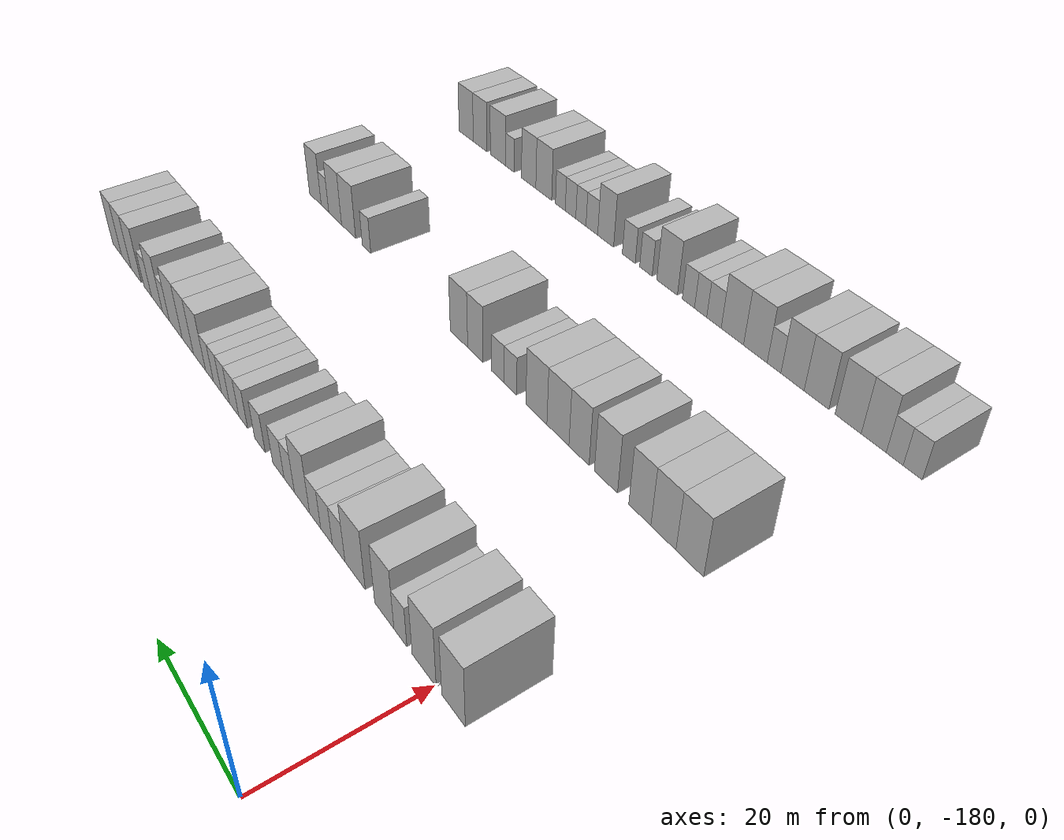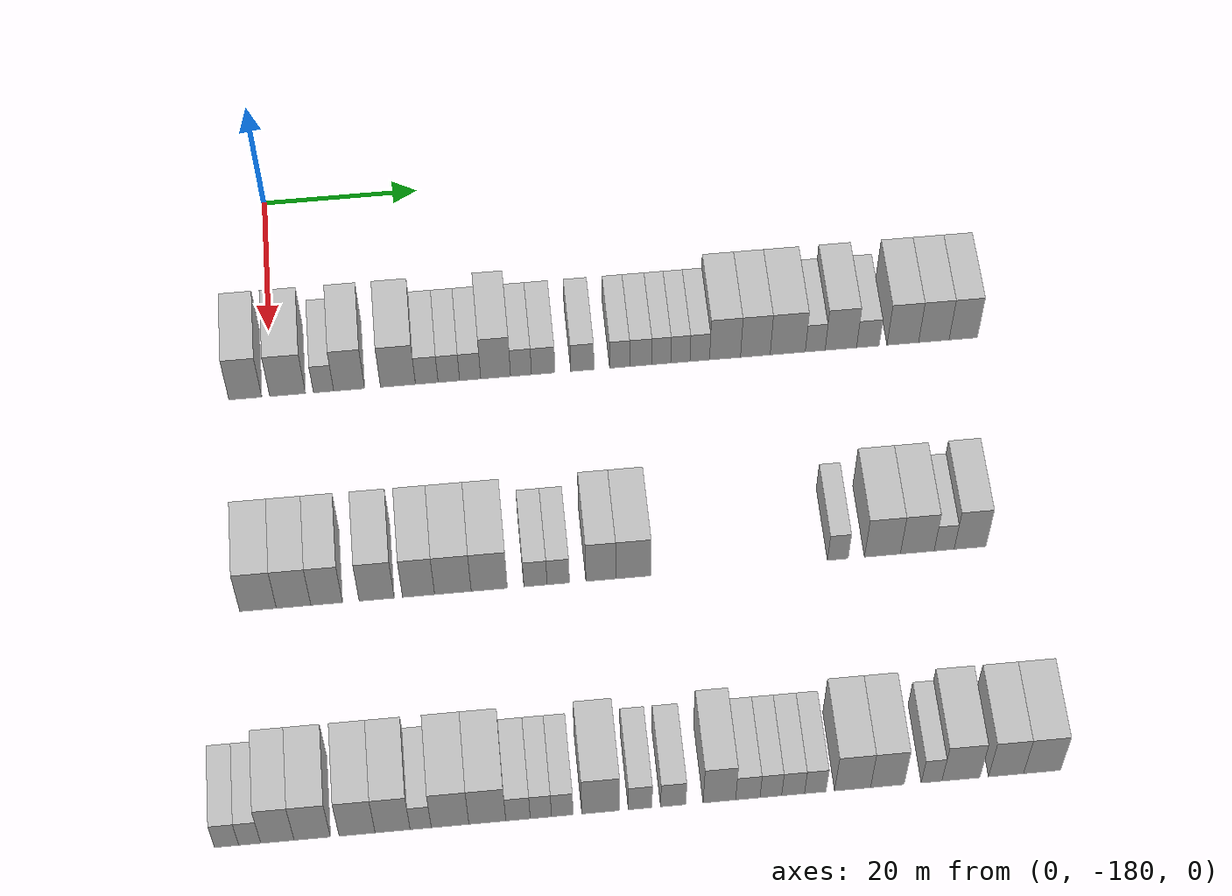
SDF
<sdf version="1.6">
 <world name="default">
  <model name="building_23">
   <static>1</static>
   <pose>25.0000 -183.2346 0 0.000000 0.000000 0.000000</pose>
   <link name="link">
    <pose>0 0 4.50 0 0 0</pose>
    <collision name="collision"><geometry><box><size>10.0000 4.1086 9.0000</size></box></geometry></collision>
    <visual name="visual">
     <cast_shadows>0</cast_shadows>
     <geometry><box><size>10.0000 4.1086 9.0000</size></box></geometry>
     <material>
      <script>
       <uri>model://HANNAS_wall/materials/scripts</uri>
       <uri>model://HANNAS_wall/materials/textures</uri>
       <name>vrc/HANNAS_wall</name>
      </script>
     </material>
    </visual>
   </link>
  </model>
  <model name="building_24">
   <static>1</static>
   <pose>25.0000 -177.9392 0 0.000000 0.000000 0.000000</pose>
   <link name="link">
    <pose>0 0 4.50 0 0 0</pose>
    <collision name="collision"><geometry><box><size>10.0000 4.4822 9.0000</size></box></geometry></collision>
    <visual name="visual">
     <cast_shadows>0</cast_shadows>
     <geometry><box><size>10.0000 4.4822 9.0000</size></box></geometry>
     <material>
      <script>
       <uri>model://HANNAS_wall/materials/scripts</uri>
       <uri>model://HANNAS_wall/materials/textures</uri>
       <name>vrc/HANNAS_wall</name>
      </script>
     </material>
    </visual>
   </link>
  </model>
  <model name="building_25">
   <static>1</static>
   <pose>25.0000 -173.4259 0 0.000000 0.000000 0.000000</pose>
   <link name="link">
    <pose>0 0 3.00 0 0 0</pose>
    <collision name="collision"><geometry><box><size>10.0000 2.5444 6.0000</size></box></geometry></collision>
    <visual name="visual">
     <cast_shadows>0</cast_shadows>
     <geometry><box><size>10.0000 2.5444 6.0000</size></box></geometry>
     <material>
      <script>
       <uri>model://HANNAS_wall/materials/scripts</uri>
       <uri>model://HANNAS_wall/materials/textures</uri>
       <name>vrc/HANNAS_wall</name>
      </script>
     </material>
    </visual>
   </link>
  </model>
  <model name="building_26">
   <static>1</static>
   <pose>25.0000 -170.2114 0 0.000000 0.000000 0.000000</pose>
   <link name="link">
    <pose>0 0 4.50 0 0 0</pose>
    <collision name="collision"><geometry><box><size>10.0000 3.8845 9.0000</size></box></geometry></collision>
    <visual name="visual">
     <cast_shadows>0</cast_shadows>
     <geometry><box><size>10.0000 3.8845 9.0000</size></box></geometry>
     <material>
      <script>
       <uri>model://HANNAS_wall/materials/scripts</uri>
       <uri>model://HANNAS_wall/materials/textures</uri>
       <name>vrc/HANNAS_wall</name>
      </script>
     </material>
    </visual>
   </link>
  </model>
  <model name="building_27">
   <static>1</static>
   <pose>25.0000 -164.0716 0 0.000000 0.000000 0.000000</pose>
   <link name="link">
    <pose>0 0 4.50 0 0 0</pose>
    <collision name="collision"><geometry><box><size>10.0000 4.3951 9.0000</size></box></geometry></collision>
    <visual name="visual">
     <cast_shadows>0</cast_shadows>
     <geometry><box><size>10.0000 4.3951 9.0000</size></box></geometry>
     <material>
      <script>
       <uri>model://HANNAS_wall/materials/scripts</uri>
       <uri>model://HANNAS_wall/materials/textures</uri>
       <name>vrc/HANNAS_wall</name>
      </script>
     </material>
    </visual>
   </link>
  </model>
  <model name="building_28">
   <static>1</static>
   <pose>25.0000 -160.4498 0 0.000000 0.000000 0.000000</pose>
   <link name="link">
    <pose>0 0 3.00 0 0 0</pose>
    <collision name="collision"><geometry><box><size>10.0000 2.8483 6.0000</size></box></geometry></collision>
    <visual name="visual">
     <cast_shadows>0</cast_shadows>
     <geometry><box><size>10.0000 2.8483 6.0000</size></box></geometry>
     <material>
      <script>
       <uri>model://HANNAS_wall/materials/scripts</uri>
       <uri>model://HANNAS_wall/materials/textures</uri>
       <name>vrc/HANNAS_wall</name>
      </script>
     </material>
    </visual>
   </link>
  </model>
  <model name="building_29">
   <static>1</static>
   <pose>25.0000 -157.6659 0 0.000000 0.000000 0.000000</pose>
   <link name="link">
    <pose>0 0 3.00 0 0 0</pose>
    <collision name="collision"><geometry><box><size>10.0000 2.7195 6.0000</size></box></geometry></collision>
    <visual name="visual">
     <cast_shadows>0</cast_shadows>
     <geometry><box><size>10.0000 2.7195 6.0000</size></box></geometry>
     <material>
      <script>
       <uri>model://HANNAS_wall/materials/scripts</uri>
       <uri>model://HANNAS_wall/materials/textures</uri>
       <name>vrc/HANNAS_wall</name>
      </script>
     </material>
    </visual>
   </link>
  </model>
  <model name="building_30">
   <static>1</static>
   <pose>25.0000 -154.9750 0 0.000000 0.000000 0.000000</pose>
   <link name="link">
    <pose>0 0 3.00 0 0 0</pose>
    <collision name="collision"><geometry><box><size>10.0000 2.6625 6.0000</size></box></geometry></collision>
    <visual name="visual">
     <cast_shadows>0</cast_shadows>
     <geometry><box><size>10.0000 2.6625 6.0000</size></box></geometry>
     <material>
      <script>
       <uri>model://HANNAS_wall/materials/scripts</uri>
       <uri>model://HANNAS_wall/materials/textures</uri>
       <name>vrc/HANNAS_wall</name>
      </script>
     </material>
    </visual>
   </link>
  </model>
  <model name="building_31">
   <static>1</static>
   <pose>25.0000 -151.7612 0 0.000000 0.000000 0.000000</pose>
   <link name="link">
    <pose>0 0 4.50 0 0 0</pose>
    <collision name="collision"><geometry><box><size>10.0000 3.7650 9.0000</size></box></geometry></collision>
    <visual name="visual">
     <cast_shadows>0</cast_shadows>
     <geometry><box><size>10.0000 3.7650 9.0000</size></box></geometry>
     <material>
      <script>
       <uri>model://HANNAS_wall/materials/scripts</uri>
       <uri>model://HANNAS_wall/materials/textures</uri>
       <name>vrc/HANNAS_wall</name>
      </script>
     </material>
    </visual>
   </link>
  </model>
  <model name="building_32">
   <static>1</static>
   <pose>25.0000 -148.5566 0 0.000000 0.000000 0.000000</pose>
   <link name="link">
    <pose>0 0 3.00 0 0 0</pose>
    <collision name="collision"><geometry><box><size>10.0000 2.6443 6.0000</size></box></geometry></collision>
    <visual name="visual">
     <cast_shadows>0</cast_shadows>
     <geometry><box><size>10.0000 2.6443 6.0000</size></box></geometry>
     <material>
      <script>
       <uri>model://HANNAS_wall/materials/scripts</uri>
       <uri>model://HANNAS_wall/materials/textures</uri>
       <name>vrc/HANNAS_wall</name>
      </script>
     </material>
    </visual>
   </link>
  </model>
  <model name="building_33">
   <static>1</static>
   <pose>25.0000 -145.7440 0 0.000000 0.000000 0.000000</pose>
   <link name="link">
    <pose>0 0 3.00 0 0 0</pose>
    <collision name="collision"><geometry><box><size>10.0000 2.9810 6.0000</size></box></geometry></collision>
    <visual name="visual">
     <cast_shadows>0</cast_shadows>
     <geometry><box><size>10.0000 2.9810 6.0000</size></box></geometry>
     <material>
      <script>
       <uri>model://HANNAS_wall/materials/scripts</uri>
       <uri>model://HANNAS_wall/materials/textures</uri>
       <name>vrc/HANNAS_wall</name>
      </script>
     </material>
    </visual>
   </link>
  </model>
  <model name="building_34">
   <static>1</static>
   <pose>25.0000 -140.7916 0 0.000000 0.000000 0.000000</pose>
   <link name="link">
    <pose>0 0 3.00 0 0 0</pose>
    <collision name="collision"><geometry><box><size>10.0000 2.9238 6.0000</size></box></geometry></collision>
    <visual name="visual">
     <cast_shadows>0</cast_shadows>
     <geometry><box><size>10.0000 2.9238 6.0000</size></box></geometry>
     <material>
      <script>
       <uri>model://HANNAS_wall/materials/scripts</uri>
       <uri>model://HANNAS_wall/materials/textures</uri>
       <name>vrc/HANNAS_wall</name>
      </script>
     </material>
    </visual>
   </link>
  </model>
  <model name="building_35">
   <static>1</static>
   <pose>25.0000 -136.0664 0 0.000000 0.000000 0.000000</pose>
   <link name="link">
    <pose>0 0 3.00 0 0 0</pose>
    <collision name="collision"><geometry><box><size>10.0000 2.5266 6.0000</size></box></geometry></collision>
    <visual name="visual">
     <cast_shadows>0</cast_shadows>
     <geometry><box><size>10.0000 2.5266 6.0000</size></box></geometry>
     <material>
      <script>
       <uri>model://HANNAS_wall/materials/scripts</uri>
       <uri>model://HANNAS_wall/materials/textures</uri>
       <name>vrc/HANNAS_wall</name>
      </script>
     </material>
    </visual>
   </link>
  </model>
  <model name="building_36">
   <static>1</static>
   <pose>25.0000 -133.4076 0 0.000000 0.000000 0.000000</pose>
   <link name="link">
    <pose>0 0 3.00 0 0 0</pose>
    <collision name="collision"><geometry><box><size>10.0000 2.7912 6.0000</size></box></geometry></collision>
    <visual name="visual">
     <cast_shadows>0</cast_shadows>
     <geometry><box><size>10.0000 2.7912 6.0000</size></box></geometry>
     <material>
      <script>
       <uri>model://HANNAS_wall/materials/scripts</uri>
       <uri>model://HANNAS_wall/materials/textures</uri>
       <name>vrc/HANNAS_wall</name>
      </script>
     </material>
    </visual>
   </link>
  </model>
  <model name="building_37">
   <static>1</static>
   <pose>25.0000 -130.7990 0 0.000000 0.000000 0.000000</pose>
   <link name="link">
    <pose>0 0 3.00 0 0 0</pose>
    <collision name="collision"><geometry><box><size>10.0000 2.4260 6.0000</size></box></geometry></collision>
    <visual name="visual">
     <cast_shadows>0</cast_shadows>
     <geometry><box><size>10.0000 2.4260 6.0000</size></box></geometry>
     <material>
      <script>
       <uri>model://HANNAS_wall/materials/scripts</uri>
       <uri>model://HANNAS_wall/materials/textures</uri>
       <name>vrc/HANNAS_wall</name>
      </script>
     </material>
    </visual>
   </link>
  </model>
  <model name="building_38">
   <static>1</static>
   <pose>25.0000 -128.3628 0 0.000000 0.000000 0.000000</pose>
   <link name="link">
    <pose>0 0 3.00 0 0 0</pose>
    <collision name="collision"><geometry><box><size>10.0000 2.4464 6.0000</size></box></geometry></collision>
    <visual name="visual">
     <cast_shadows>0</cast_shadows>
     <geometry><box><size>10.0000 2.4464 6.0000</size></box></geometry>
     <material>
      <script>
       <uri>model://HANNAS_wall/materials/scripts</uri>
       <uri>model://HANNAS_wall/materials/textures</uri>
       <name>vrc/HANNAS_wall</name>
      </script>
     </material>
    </visual>
   </link>
  </model>
  <model name="building_39">
   <static>1</static>
   <pose>25.0000 -125.8921 0 0.000000 0.000000 0.000000</pose>
   <link name="link">
    <pose>0 0 3.00 0 0 0</pose>
    <collision name="collision"><geometry><box><size>10.0000 2.4951 6.0000</size></box></geometry></collision>
    <visual name="visual">
     <cast_shadows>0</cast_shadows>
     <geometry><box><size>10.0000 2.4951 6.0000</size></box></geometry>
     <material>
      <script>
       <uri>model://HANNAS_wall/materials/scripts</uri>
       <uri>model://HANNAS_wall/materials/textures</uri>
       <name>vrc/HANNAS_wall</name>
      </script>
     </material>
    </visual>
   </link>
  </model>
  <model name="building_40">
   <static>1</static>
   <pose>25.0000 -122.6725 0 0.000000 0.000000 0.000000</pose>
   <link name="link">
    <pose>0 0 4.50 0 0 0</pose>
    <collision name="collision"><geometry><box><size>10.0000 3.9441 9.0000</size></box></geometry></collision>
    <visual name="visual">
     <cast_shadows>0</cast_shadows>
     <geometry><box><size>10.0000 3.9441 9.0000</size></box></geometry>
     <material>
      <script>
       <uri>model://HANNAS_wall/materials/scripts</uri>
       <uri>model://HANNAS_wall/materials/textures</uri>
       <name>vrc/HANNAS_wall</name>
      </script>
     </material>
    </visual>
   </link>
  </model>
  <model name="building_41">
   <static>1</static>
   <pose>25.0000 -118.8062 0 0.000000 0.000000 0.000000</pose>
   <link name="link">
    <pose>0 0 4.50 0 0 0</pose>
    <collision name="collision"><geometry><box><size>10.0000 3.7884 9.0000</size></box></geometry></collision>
    <visual name="visual">
     <cast_shadows>0</cast_shadows>
     <geometry><box><size>10.0000 3.7884 9.0000</size></box></geometry>
     <material>
      <script>
       <uri>model://HANNAS_wall/materials/scripts</uri>
       <uri>model://HANNAS_wall/materials/textures</uri>
       <name>vrc/HANNAS_wall</name>
      </script>
     </material>
    </visual>
   </link>
  </model>
  <model name="building_42">
   <static>1</static>
   <pose>25.0000 -114.6699 0 0.000000 0.000000 0.000000</pose>
   <link name="link">
    <pose>0 0 4.50 0 0 0</pose>
    <collision name="collision"><geometry><box><size>10.0000 4.4842 9.0000</size></box></geometry></collision>
    <visual name="visual">
     <cast_shadows>0</cast_shadows>
     <geometry><box><size>10.0000 4.4842 9.0000</size></box></geometry>
     <material>
      <script>
       <uri>model://HANNAS_wall/materials/scripts</uri>
       <uri>model://HANNAS_wall/materials/textures</uri>
       <name>vrc/HANNAS_wall</name>
      </script>
     </material>
    </visual>
   </link>
  </model>
  <model name="building_43">
   <static>1</static>
   <pose>25.0000 -111.1604 0 0.000000 0.000000 0.000000</pose>
   <link name="link">
    <pose>0 0 3.00 0 0 0</pose>
    <collision name="collision"><geometry><box><size>10.0000 2.5348 6.0000</size></box></geometry></collision>
    <visual name="visual">
     <cast_shadows>0</cast_shadows>
     <geometry><box><size>10.0000 2.5348 6.0000</size></box></geometry>
     <material>
      <script>
       <uri>model://HANNAS_wall/materials/scripts</uri>
       <uri>model://HANNAS_wall/materials/textures</uri>
       <name>vrc/HANNAS_wall</name>
      </script>
     </material>
    </visual>
   </link>
  </model>
  <model name="building_44">
   <static>1</static>
   <pose>25.0000 -107.8823 0 0.000000 0.000000 0.000000</pose>
   <link name="link">
    <pose>0 0 4.50 0 0 0</pose>
    <collision name="collision"><geometry><box><size>10.0000 4.0214 9.0000</size></box></geometry></collision>
    <visual name="visual">
     <cast_shadows>0</cast_shadows>
     <geometry><box><size>10.0000 4.0214 9.0000</size></box></geometry>
     <material>
      <script>
       <uri>model://HANNAS_wall/materials/scripts</uri>
       <uri>model://HANNAS_wall/materials/textures</uri>
       <name>vrc/HANNAS_wall</name>
      </script>
     </material>
    </visual>
   </link>
  </model>
  <model name="building_45">
   <static>1</static>
   <pose>25.0000 -104.4185 0 0.000000 0.000000 0.000000</pose>
   <link name="link">
    <pose>0 0 3.00 0 0 0</pose>
    <collision name="collision"><geometry><box><size>10.0000 2.9063 6.0000</size></box></geometry></collision>
    <visual name="visual">
     <cast_shadows>0</cast_shadows>
     <geometry><box><size>10.0000 2.9063 6.0000</size></box></geometry>
     <material>
      <script>
       <uri>model://HANNAS_wall/materials/scripts</uri>
       <uri>model://HANNAS_wall/materials/textures</uri>
       <name>vrc/HANNAS_wall</name>
      </script>
     </material>
    </visual>
   </link>
  </model>
  <model name="building_46">
   <static>1</static>
   <pose>25.0000 -99.9442 0 0.000000 0.000000 0.000000</pose>
   <link name="link">
    <pose>0 0 4.50 0 0 0</pose>
    <collision name="collision"><geometry><box><size>10.0000 4.0422 9.0000</size></box></geometry></collision>
    <visual name="visual">
     <cast_shadows>0</cast_shadows>
     <geometry><box><size>10.0000 4.0422 9.0000</size></box></geometry>
     <material>
      <script>
       <uri>model://HANNAS_wall/materials/scripts</uri>
       <uri>model://HANNAS_wall/materials/textures</uri>
       <name>vrc/HANNAS_wall</name>
      </script>
     </material>
    </visual>
   </link>
  </model>
  <model name="building_47">
   <static>1</static>
   <pose>25.0000 -95.9646 0 0.000000 0.000000 0.000000</pose>
   <link name="link">
    <pose>0 0 4.50 0 0 0</pose>
    <collision name="collision"><geometry><box><size>10.0000 3.9172 9.0000</size></box></geometry></collision>
    <visual name="visual">
     <cast_shadows>0</cast_shadows>
     <geometry><box><size>10.0000 3.9172 9.0000</size></box></geometry>
     <material>
      <script>
       <uri>model://HANNAS_wall/materials/scripts</uri>
       <uri>model://HANNAS_wall/materials/textures</uri>
       <name>vrc/HANNAS_wall</name>
      </script>
     </material>
    </visual>
   </link>
  </model>
  <model name="building_48">
   <static>1</static>
   <pose>25.0000 -92.1847 0 0.000000 0.000000 0.000000</pose>
   <link name="link">
    <pose>0 0 4.50 0 0 0</pose>
    <collision name="collision"><geometry><box><size>10.0000 3.6426 9.0000</size></box></geometry></collision>
    <visual name="visual">
     <cast_shadows>0</cast_shadows>
     <geometry><box><size>10.0000 3.6426 9.0000</size></box></geometry>
     <material>
      <script>
       <uri>model://HANNAS_wall/materials/scripts</uri>
       <uri>model://HANNAS_wall/materials/textures</uri>
       <name>vrc/HANNAS_wall</name>
      </script>
     </material>
    </visual>
   </link>
  </model>
  <model name="building_161">
   <static>1</static>
   <pose>55.0000 -182.5062 0 0.000000 0.000000 0.000000</pose>
   <link name="link">
    <pose>0 0 4.50 0 0 0</pose>
    <collision name="collision"><geometry><box><size>10.0000 4.3771 9.0000</size></box></geometry></collision>
    <visual name="visual">
     <cast_shadows>0</cast_shadows>
     <geometry><box><size>10.0000 4.3771 9.0000</size></box></geometry>
     <material>
      <script>
       <uri>model://HANNAS_wall/materials/scripts</uri>
       <uri>model://HANNAS_wall/materials/textures</uri>
       <name>vrc/HANNAS_wall</name>
      </script>
     </material>
    </visual>
   </link>
  </model>
  <model name="building_162">
   <static>1</static>
   <pose>55.0000 -178.2542 0 0.000000 0.000000 0.000000</pose>
   <link name="link">
    <pose>0 0 4.50 0 0 0</pose>
    <collision name="collision"><geometry><box><size>10.0000 4.1270 9.0000</size></box></geometry></collision>
    <visual name="visual">
     <cast_shadows>0</cast_shadows>
     <geometry><box><size>10.0000 4.1270 9.0000</size></box></geometry>
     <material>
      <script>
       <uri>model://HANNAS_wall/materials/scripts</uri>
       <uri>model://HANNAS_wall/materials/textures</uri>
       <name>vrc/HANNAS_wall</name>
      </script>
     </material>
    </visual>
   </link>
  </model>
  <model name="building_163">
   <static>1</static>
   <pose>55.0000 -174.2946 0 0.000000 0.000000 0.000000</pose>
   <link name="link">
    <pose>0 0 4.50 0 0 0</pose>
    <collision name="collision"><geometry><box><size>10.0000 3.7922 9.0000</size></box></geometry></collision>
    <visual name="visual">
     <cast_shadows>0</cast_shadows>
     <geometry><box><size>10.0000 3.7922 9.0000</size></box></geometry>
     <material>
      <script>
       <uri>model://HANNAS_wall/materials/scripts</uri>
       <uri>model://HANNAS_wall/materials/textures</uri>
       <name>vrc/HANNAS_wall</name>
      </script>
     </material>
    </visual>
   </link>
  </model>
  <model name="building_164">
   <static>1</static>
   <pose>55.0000 -168.2914 0 0.000000 0.000000 0.000000</pose>
   <link name="link">
    <pose>0 0 4.50 0 0 0</pose>
    <collision name="collision"><geometry><box><size>10.0000 4.2143 9.0000</size></box></geometry></collision>
    <visual name="visual">
     <cast_shadows>0</cast_shadows>
     <geometry><box><size>10.0000 4.2143 9.0000</size></box></geometry>
     <material>
      <script>
       <uri>model://HANNAS_wall/materials/scripts</uri>
       <uri>model://HANNAS_wall/materials/textures</uri>
       <name>vrc/HANNAS_wall</name>
      </script>
     </material>
    </visual>
   </link>
  </model>
  <model name="building_165">
   <static>1</static>
   <pose>55.0000 -163.2559 0 0.000000 0.000000 0.000000</pose>
   <link name="link">
    <pose>0 0 4.50 0 0 0</pose>
    <collision name="collision"><geometry><box><size>10.0000 3.8566 9.0000</size></box></geometry></collision>
    <visual name="visual">
     <cast_shadows>0</cast_shadows>
     <geometry><box><size>10.0000 3.8566 9.0000</size></box></geometry>
     <material>
      <script>
       <uri>model://HANNAS_wall/materials/scripts</uri>
       <uri>model://HANNAS_wall/materials/textures</uri>
       <name>vrc/HANNAS_wall</name>
      </script>
     </material>
    </visual>
   </link>
  </model>
  <model name="building_166">
   <static>1</static>
   <pose>55.0000 -159.1270 0 0.000000 0.000000 0.000000</pose>
   <link name="link">
    <pose>0 0 4.50 0 0 0</pose>
    <collision name="collision"><geometry><box><size>10.0000 4.4013 9.0000</size></box></geometry></collision>
    <visual name="visual">
     <cast_shadows>0</cast_shadows>
     <geometry><box><size>10.0000 4.4013 9.0000</size></box></geometry>
     <material>
      <script>
       <uri>model://HANNAS_wall/materials/scripts</uri>
       <uri>model://HANNAS_wall/materials/textures</uri>
       <name>vrc/HANNAS_wall</name>
      </script>
     </material>
    </visual>
   </link>
  </model>
  <model name="building_167">
   <static>1</static>
   <pose>55.0000 -154.7473 0 0.000000 0.000000 0.000000</pose>
   <link name="link">
    <pose>0 0 4.50 0 0 0</pose>
    <collision name="collision"><geometry><box><size>10.0000 4.3580 9.0000</size></box></geometry></collision>
    <visual name="visual">
     <cast_shadows>0</cast_shadows>
     <geometry><box><size>10.0000 4.3580 9.0000</size></box></geometry>
     <material>
      <script>
       <uri>model://HANNAS_wall/materials/scripts</uri>
       <uri>model://HANNAS_wall/materials/textures</uri>
       <name>vrc/HANNAS_wall</name>
      </script>
     </material>
    </visual>
   </link>
  </model>
  <model name="building_168">
   <static>1</static>
   <pose>55.0000 -149.1738 0 0.000000 0.000000 0.000000</pose>
   <link name="link">
    <pose>0 0 3.00 0 0 0</pose>
    <collision name="collision"><geometry><box><size>10.0000 2.7890 6.0000</size></box></geometry></collision>
    <visual name="visual">
     <cast_shadows>0</cast_shadows>
     <geometry><box><size>10.0000 2.7890 6.0000</size></box></geometry>
     <material>
      <script>
       <uri>model://HANNAS_wall/materials/scripts</uri>
       <uri>model://HANNAS_wall/materials/textures</uri>
       <name>vrc/HANNAS_wall</name>
      </script>
     </material>
    </visual>
   </link>
  </model>
  <model name="building_169">
   <static>1</static>
   <pose>55.0000 -146.4246 0 0.000000 0.000000 0.000000</pose>
   <link name="link">
    <pose>0 0 3.00 0 0 0</pose>
    <collision name="collision"><geometry><box><size>10.0000 2.7095 6.0000</size></box></geometry></collision>
    <visual name="visual">
     <cast_shadows>0</cast_shadows>
     <geometry><box><size>10.0000 2.7095 6.0000</size></box></geometry>
     <material>
      <script>
       <uri>model://HANNAS_wall/materials/scripts</uri>
       <uri>model://HANNAS_wall/materials/textures</uri>
       <name>vrc/HANNAS_wall</name>
      </script>
     </material>
    </visual>
   </link>
  </model>
  <model name="building_170">
   <static>1</static>
   <pose>55.0000 -141.2665 0 0.000000 0.000000 0.000000</pose>
   <link name="link">
    <pose>0 0 4.50 0 0 0</pose>
    <collision name="collision"><geometry><box><size>10.0000 3.6068 9.0000</size></box></geometry></collision>
    <visual name="visual">
     <cast_shadows>0</cast_shadows>
     <geometry><box><size>10.0000 3.6068 9.0000</size></box></geometry>
     <material>
      <script>
       <uri>model://HANNAS_wall/materials/scripts</uri>
       <uri>model://HANNAS_wall/materials/textures</uri>
       <name>vrc/HANNAS_wall</name>
      </script>
     </material>
    </visual>
   </link>
  </model>
  <model name="building_171">
   <static>1</static>
   <pose>55.0000 -137.3552 0 0.000000 0.000000 0.000000</pose>
   <link name="link">
    <pose>0 0 4.50 0 0 0</pose>
    <collision name="collision"><geometry><box><size>10.0000 4.2157 9.0000</size></box></geometry></collision>
    <visual name="visual">
     <cast_shadows>0</cast_shadows>
     <geometry><box><size>10.0000 4.2157 9.0000</size></box></geometry>
     <material>
      <script>
       <uri>model://HANNAS_wall/materials/scripts</uri>
       <uri>model://HANNAS_wall/materials/textures</uri>
       <name>vrc/HANNAS_wall</name>
      </script>
     </material>
    </visual>
   </link>
  </model>
  <model name="building_172">
   <static>1</static>
   <pose>55.0000 -112.4554 0 0.000000 0.000000 0.000000</pose>
   <link name="link">
    <pose>0 0 3.00 0 0 0</pose>
    <collision name="collision"><geometry><box><size>10.0000 2.5280 6.0000</size></box></geometry></collision>
    <visual name="visual">
     <cast_shadows>0</cast_shadows>
     <geometry><box><size>10.0000 2.5280 6.0000</size></box></geometry>
     <material>
      <script>
       <uri>model://HANNAS_wall/materials/scripts</uri>
       <uri>model://HANNAS_wall/materials/textures</uri>
       <name>vrc/HANNAS_wall</name>
      </script>
     </material>
    </visual>
   </link>
  </model>
  <model name="building_173">
   <static>1</static>
   <pose>55.0000 -106.9963 0 0.000000 0.000000 0.000000</pose>
   <link name="link">
    <pose>0 0 4.50 0 0 0</pose>
    <collision name="collision"><geometry><box><size>10.0000 4.3902 9.0000</size></box></geometry></collision>
    <visual name="visual">
     <cast_shadows>0</cast_shadows>
     <geometry><box><size>10.0000 4.3902 9.0000</size></box></geometry>
     <material>
      <script>
       <uri>model://HANNAS_wall/materials/scripts</uri>
       <uri>model://HANNAS_wall/materials/textures</uri>
       <name>vrc/HANNAS_wall</name>
      </script>
     </material>
    </visual>
   </link>
  </model>
  <model name="building_174">
   <static>1</static>
   <pose>55.0000 -102.7351 0 0.000000 0.000000 0.000000</pose>
   <link name="link">
    <pose>0 0 4.50 0 0 0</pose>
    <collision name="collision"><geometry><box><size>10.0000 4.1322 9.0000</size></box></geometry></collision>
    <visual name="visual">
     <cast_shadows>0</cast_shadows>
     <geometry><box><size>10.0000 4.1322 9.0000</size></box></geometry>
     <material>
      <script>
       <uri>model://HANNAS_wall/materials/scripts</uri>
       <uri>model://HANNAS_wall/materials/textures</uri>
       <name>vrc/HANNAS_wall</name>
      </script>
     </material>
    </visual>
   </link>
  </model>
  <model name="building_175">
   <static>1</static>
   <pose>55.0000 -99.4397 0 0.000000 0.000000 0.000000</pose>
   <link name="link">
    <pose>0 0 3.00 0 0 0</pose>
    <collision name="collision"><geometry><box><size>10.0000 2.4585 6.0000</size></box></geometry></collision>
    <visual name="visual">
     <cast_shadows>0</cast_shadows>
     <geometry><box><size>10.0000 2.4585 6.0000</size></box></geometry>
     <material>
      <script>
       <uri>model://HANNAS_wall/materials/scripts</uri>
       <uri>model://HANNAS_wall/materials/textures</uri>
       <name>vrc/HANNAS_wall</name>
      </script>
     </material>
    </visual>
   </link>
  </model>
  <model name="building_176">
   <static>1</static>
   <pose>55.0000 -96.2603 0 0.000000 0.000000 0.000000</pose>
   <link name="link">
    <pose>0 0 4.50 0 0 0</pose>
    <collision name="collision"><geometry><box><size>10.0000 3.9003 9.0000</size></box></geometry></collision>
    <visual name="visual">
     <cast_shadows>0</cast_shadows>
     <geometry><box><size>10.0000 3.9003 9.0000</size></box></geometry>
     <material>
      <script>
       <uri>model://HANNAS_wall/materials/scripts</uri>
       <uri>model://HANNAS_wall/materials/textures</uri>
       <name>vrc/HANNAS_wall</name>
      </script>
     </material>
    </visual>
   </link>
  </model>
  <model name="building_291">
   <static>1</static>
   <pose>85.0000 -186.9479 0 0.000000 0.000000 0.000000</pose>
   <link name="link">
    <pose>0 0 3.00 0 0 0</pose>
    <collision name="collision"><geometry><box><size>10.0000 2.7594 6.0000</size></box></geometry></collision>
    <visual name="visual">
     <cast_shadows>0</cast_shadows>
     <geometry><box><size>10.0000 2.7594 6.0000</size></box></geometry>
     <material>
      <script>
       <uri>model://HANNAS_wall/materials/scripts</uri>
       <uri>model://HANNAS_wall/materials/textures</uri>
       <name>vrc/HANNAS_wall</name>
      </script>
     </material>
    </visual>
   </link>
  </model>
  <model name="building_292">
   <static>1</static>
   <pose>85.0000 -184.3168 0 0.000000 0.000000 0.000000</pose>
   <link name="link">
    <pose>0 0 3.00 0 0 0</pose>
    <collision name="collision"><geometry><box><size>10.0000 2.5028 6.0000</size></box></geometry></collision>
    <visual name="visual">
     <cast_shadows>0</cast_shadows>
     <geometry><box><size>10.0000 2.5028 6.0000</size></box></geometry>
     <material>
      <script>
       <uri>model://HANNAS_wall/materials/scripts</uri>
       <uri>model://HANNAS_wall/materials/textures</uri>
       <name>vrc/HANNAS_wall</name>
      </script>
     </material>
    </visual>
   </link>
  </model>
  <model name="building_293">
   <static>1</static>
   <pose>85.0000 -181.1622 0 0.000000 0.000000 0.000000</pose>
   <link name="link">
    <pose>0 0 4.50 0 0 0</pose>
    <collision name="collision"><geometry><box><size>10.0000 3.8064 9.0000</size></box></geometry></collision>
    <visual name="visual">
     <cast_shadows>0</cast_shadows>
     <geometry><box><size>10.0000 3.8064 9.0000</size></box></geometry>
     <material>
      <script>
       <uri>model://HANNAS_wall/materials/scripts</uri>
       <uri>model://HANNAS_wall/materials/textures</uri>
       <name>vrc/HANNAS_wall</name>
      </script>
     </material>
    </visual>
   </link>
  </model>
  <model name="building_294">
   <static>1</static>
   <pose>85.0000 -177.1877 0 0.000000 0.000000 0.000000</pose>
   <link name="link">
    <pose>0 0 4.50 0 0 0</pose>
    <collision name="collision"><geometry><box><size>10.0000 4.1425 9.0000</size></box></geometry></collision>
    <visual name="visual">
     <cast_shadows>0</cast_shadows>
     <geometry><box><size>10.0000 4.1425 9.0000</size></box></geometry>
     <material>
      <script>
       <uri>model://HANNAS_wall/materials/scripts</uri>
       <uri>model://HANNAS_wall/materials/textures</uri>
       <name>vrc/HANNAS_wall</name>
      </script>
     </material>
    </visual>
   </link>
  </model>
  <model name="building_295">
   <static>1</static>
   <pose>85.0000 -172.0619 0 0.000000 0.000000 0.000000</pose>
   <link name="link">
    <pose>0 0 4.50 0 0 0</pose>
    <collision name="collision"><geometry><box><size>10.0000 4.1090 9.0000</size></box></geometry></collision>
    <visual name="visual">
     <cast_shadows>0</cast_shadows>
     <geometry><box><size>10.0000 4.1090 9.0000</size></box></geometry>
     <material>
      <script>
       <uri>model://HANNAS_wall/materials/scripts</uri>
       <uri>model://HANNAS_wall/materials/textures</uri>
       <name>vrc/HANNAS_wall</name>
      </script>
     </material>
    </visual>
   </link>
  </model>
  <model name="building_296">
   <static>1</static>
   <pose>85.0000 -168.0046 0 0.000000 0.000000 0.000000</pose>
   <link name="link">
    <pose>0 0 4.50 0 0 0</pose>
    <collision name="collision"><geometry><box><size>10.0000 4.0056 9.0000</size></box></geometry></collision>
    <visual name="visual">
     <cast_shadows>0</cast_shadows>
     <geometry><box><size>10.0000 4.0056 9.0000</size></box></geometry>
     <material>
      <script>
       <uri>model://HANNAS_wall/materials/scripts</uri>
       <uri>model://HANNAS_wall/materials/textures</uri>
       <name>vrc/HANNAS_wall</name>
      </script>
     </material>
    </visual>
   </link>
  </model>
  <model name="building_297">
   <static>1</static>
   <pose>85.0000 -164.7915 0 0.000000 0.000000 0.000000</pose>
   <link name="link">
    <pose>0 0 3.00 0 0 0</pose>
    <collision name="collision"><geometry><box><size>10.0000 2.4206 6.0000</size></box></geometry></collision>
    <visual name="visual">
     <cast_shadows>0</cast_shadows>
     <geometry><box><size>10.0000 2.4206 6.0000</size></box></geometry>
     <material>
      <script>
       <uri>model://HANNAS_wall/materials/scripts</uri>
       <uri>model://HANNAS_wall/materials/textures</uri>
       <name>vrc/HANNAS_wall</name>
      </script>
     </material>
    </visual>
   </link>
  </model>
  <model name="building_298">
   <static>1</static>
   <pose>85.0000 -161.4248 0 0.000000 0.000000 0.000000</pose>
   <link name="link">
    <pose>0 0 4.50 0 0 0</pose>
    <collision name="collision"><geometry><box><size>10.0000 4.3127 9.0000</size></box></geometry></collision>
    <visual name="visual">
     <cast_shadows>0</cast_shadows>
     <geometry><box><size>10.0000 4.3127 9.0000</size></box></geometry>
     <material>
      <script>
       <uri>model://HANNAS_wall/materials/scripts</uri>
       <uri>model://HANNAS_wall/materials/textures</uri>
       <name>vrc/HANNAS_wall</name>
      </script>
     </material>
    </visual>
   </link>
  </model>
  <model name="building_299">
   <static>1</static>
   <pose>85.0000 -157.1500 0 0.000000 0.000000 0.000000</pose>
   <link name="link">
    <pose>0 0 4.50 0 0 0</pose>
    <collision name="collision"><geometry><box><size>10.0000 4.2370 9.0000</size></box></geometry></collision>
    <visual name="visual">
     <cast_shadows>0</cast_shadows>
     <geometry><box><size>10.0000 4.2370 9.0000</size></box></geometry>
     <material>
      <script>
       <uri>model://HANNAS_wall/materials/scripts</uri>
       <uri>model://HANNAS_wall/materials/textures</uri>
       <name>vrc/HANNAS_wall</name>
      </script>
     </material>
    </visual>
   </link>
  </model>
  <model name="building_300">
   <static>1</static>
   <pose>85.0000 -153.6263 0 0.000000 0.000000 0.000000</pose>
   <link name="link">
    <pose>0 0 3.00 0 0 0</pose>
    <collision name="collision"><geometry><box><size>10.0000 2.8102 6.0000</size></box></geometry></collision>
    <visual name="visual">
     <cast_shadows>0</cast_shadows>
     <geometry><box><size>10.0000 2.8102 6.0000</size></box></geometry>
     <material>
      <script>
       <uri>model://HANNAS_wall/materials/scripts</uri>
       <uri>model://HANNAS_wall/materials/textures</uri>
       <name>vrc/HANNAS_wall</name>
      </script>
     </material>
    </visual>
   </link>
  </model>
  <model name="building_301">
   <static>1</static>
   <pose>85.0000 -150.9981 0 0.000000 0.000000 0.000000</pose>
   <link name="link">
    <pose>0 0 3.00 0 0 0</pose>
    <collision name="collision"><geometry><box><size>10.0000 2.4463 6.0000</size></box></geometry></collision>
    <visual name="visual">
     <cast_shadows>0</cast_shadows>
     <geometry><box><size>10.0000 2.4463 6.0000</size></box></geometry>
     <material>
      <script>
       <uri>model://HANNAS_wall/materials/scripts</uri>
       <uri>model://HANNAS_wall/materials/textures</uri>
       <name>vrc/HANNAS_wall</name>
      </script>
     </material>
    </visual>
   </link>
  </model>
  <model name="building_302">
   <static>1</static>
   <pose>85.0000 -148.5281 0 0.000000 0.000000 0.000000</pose>
   <link name="link">
    <pose>0 0 3.00 0 0 0</pose>
    <collision name="collision"><geometry><box><size>10.0000 2.4936 6.0000</size></box></geometry></collision>
    <visual name="visual">
     <cast_shadows>0</cast_shadows>
     <geometry><box><size>10.0000 2.4936 6.0000</size></box></geometry>
     <material>
      <script>
       <uri>model://HANNAS_wall/materials/scripts</uri>
       <uri>model://HANNAS_wall/materials/textures</uri>
       <name>vrc/HANNAS_wall</name>
      </script>
     </material>
    </visual>
   </link>
  </model>
  <model name="building_303">
   <static>1</static>
   <pose>85.0000 -144.0969 0 0.000000 0.000000 0.000000</pose>
   <link name="link">
    <pose>0 0 4.50 0 0 0</pose>
    <collision name="collision"><geometry><box><size>10.0000 4.3688 9.0000</size></box></geometry></collision>
    <visual name="visual">
     <cast_shadows>0</cast_shadows>
     <geometry><box><size>10.0000 4.3688 9.0000</size></box></geometry>
     <material>
      <script>
       <uri>model://HANNAS_wall/materials/scripts</uri>
       <uri>model://HANNAS_wall/materials/textures</uri>
       <name>vrc/HANNAS_wall</name>
      </script>
     </material>
    </visual>
   </link>
  </model>
  <model name="building_304">
   <static>1</static>
   <pose>85.0000 -139.5476 0 0.000000 0.000000 0.000000</pose>
   <link name="link">
    <pose>0 0 3.00 0 0 0</pose>
    <collision name="collision"><geometry><box><size>10.0000 2.7299 6.0000</size></box></geometry></collision>
    <visual name="visual">
     <cast_shadows>0</cast_shadows>
     <geometry><box><size>10.0000 2.7299 6.0000</size></box></geometry>
     <material>
      <script>
       <uri>model://HANNAS_wall/materials/scripts</uri>
       <uri>model://HANNAS_wall/materials/textures</uri>
       <name>vrc/HANNAS_wall</name>
      </script>
     </material>
    </visual>
   </link>
  </model>
  <model name="building_305">
   <static>1</static>
   <pose>85.0000 -135.7257 0 0.000000 0.000000 0.000000</pose>
   <link name="link">
    <pose>0 0 3.00 0 0 0</pose>
    <collision name="collision"><geometry><box><size>10.0000 2.9138 6.0000</size></box></geometry></collision>
    <visual name="visual">
     <cast_shadows>0</cast_shadows>
     <geometry><box><size>10.0000 2.9138 6.0000</size></box></geometry>
     <material>
      <script>
       <uri>model://HANNAS_wall/materials/scripts</uri>
       <uri>model://HANNAS_wall/materials/textures</uri>
       <name>vrc/HANNAS_wall</name>
      </script>
     </material>
    </visual>
   </link>
  </model>
  <model name="building_306">
   <static>1</static>
   <pose>85.0000 -130.3862 0 0.000000 0.000000 0.000000</pose>
   <link name="link">
    <pose>0 0 4.50 0 0 0</pose>
    <collision name="collision"><geometry><box><size>10.0000 3.7651 9.0000</size></box></geometry></collision>
    <visual name="visual">
     <cast_shadows>0</cast_shadows>
     <geometry><box><size>10.0000 3.7651 9.0000</size></box></geometry>
     <material>
      <script>
       <uri>model://HANNAS_wall/materials/scripts</uri>
       <uri>model://HANNAS_wall/materials/textures</uri>
       <name>vrc/HANNAS_wall</name>
      </script>
     </material>
    </visual>
   </link>
  </model>
  <model name="building_307">
   <static>1</static>
   <pose>85.0000 -127.0909 0 0.000000 0.000000 0.000000</pose>
   <link name="link">
    <pose>0 0 3.00 0 0 0</pose>
    <collision name="collision"><geometry><box><size>10.0000 2.8256 6.0000</size></box></geometry></collision>
    <visual name="visual">
     <cast_shadows>0</cast_shadows>
     <geometry><box><size>10.0000 2.8256 6.0000</size></box></geometry>
     <material>
      <script>
       <uri>model://HANNAS_wall/materials/scripts</uri>
       <uri>model://HANNAS_wall/materials/textures</uri>
       <name>vrc/HANNAS_wall</name>
      </script>
     </material>
    </visual>
   </link>
  </model>
  <model name="building_308">
   <static>1</static>
   <pose>85.0000 -124.4230 0 0.000000 0.000000 0.000000</pose>
   <link name="link">
    <pose>0 0 3.00 0 0 0</pose>
    <collision name="collision"><geometry><box><size>10.0000 2.5101 6.0000</size></box></geometry></collision>
    <visual name="visual">
     <cast_shadows>0</cast_shadows>
     <geometry><box><size>10.0000 2.5101 6.0000</size></box></geometry>
     <material>
      <script>
       <uri>model://HANNAS_wall/materials/scripts</uri>
       <uri>model://HANNAS_wall/materials/textures</uri>
       <name>vrc/HANNAS_wall</name>
      </script>
     </material>
    </visual>
   </link>
  </model>
  <model name="building_309">
   <static>1</static>
   <pose>85.0000 -121.8388 0 0.000000 0.000000 0.000000</pose>
   <link name="link">
    <pose>0 0 3.00 0 0 0</pose>
    <collision name="collision"><geometry><box><size>10.0000 2.6584 6.0000</size></box></geometry></collision>
    <visual name="visual">
     <cast_shadows>0</cast_shadows>
     <geometry><box><size>10.0000 2.6584 6.0000</size></box></geometry>
     <material>
      <script>
       <uri>model://HANNAS_wall/materials/scripts</uri>
       <uri>model://HANNAS_wall/materials/textures</uri>
       <name>vrc/HANNAS_wall</name>
      </script>
     </material>
    </visual>
   </link>
  </model>
  <model name="building_310">
   <static>1</static>
   <pose>85.0000 -119.2620 0 0.000000 0.000000 0.000000</pose>
   <link name="link">
    <pose>0 0 3.00 0 0 0</pose>
    <collision name="collision"><geometry><box><size>10.0000 2.4951 6.0000</size></box></geometry></collision>
    <visual name="visual">
     <cast_shadows>0</cast_shadows>
     <geometry><box><size>10.0000 2.4951 6.0000</size></box></geometry>
     <material>
      <script>
       <uri>model://HANNAS_wall/materials/scripts</uri>
       <uri>model://HANNAS_wall/materials/textures</uri>
       <name>vrc/HANNAS_wall</name>
      </script>
     </material>
    </visual>
   </link>
  </model>
  <model name="building_311">
   <static>1</static>
   <pose>85.0000 -114.9207 0 0.000000 0.000000 0.000000</pose>
   <link name="link">
    <pose>0 0 4.50 0 0 0</pose>
    <collision name="collision"><geometry><box><size>10.0000 4.1874 9.0000</size></box></geometry></collision>
    <visual name="visual">
     <cast_shadows>0</cast_shadows>
     <geometry><box><size>10.0000 4.1874 9.0000</size></box></geometry>
     <material>
      <script>
       <uri>model://HANNAS_wall/materials/scripts</uri>
       <uri>model://HANNAS_wall/materials/textures</uri>
       <name>vrc/HANNAS_wall</name>
      </script>
     </material>
    </visual>
   </link>
  </model>
  <model name="building_312">
   <static>1</static>
   <pose>85.0000 -110.8673 0 0.000000 0.000000 0.000000</pose>
   <link name="link">
    <pose>0 0 4.50 0 0 0</pose>
    <collision name="collision"><geometry><box><size>10.0000 3.9194 9.0000</size></box></geometry></collision>
    <visual name="visual">
     <cast_shadows>0</cast_shadows>
     <geometry><box><size>10.0000 3.9194 9.0000</size></box></geometry>
     <material>
      <script>
       <uri>model://HANNAS_wall/materials/scripts</uri>
       <uri>model://HANNAS_wall/materials/textures</uri>
       <name>vrc/HANNAS_wall</name>
      </script>
     </material>
    </visual>
   </link>
  </model>
  <model name="building_313">
   <static>1</static>
   <pose>85.0000 -105.7004 0 0.000000 0.000000 0.000000</pose>
   <link name="link">
    <pose>0 0 3.00 0 0 0</pose>
    <collision name="collision"><geometry><box><size>10.0000 2.4144 6.0000</size></box></geometry></collision>
    <visual name="visual">
     <cast_shadows>0</cast_shadows>
     <geometry><box><size>10.0000 2.4144 6.0000</size></box></geometry>
     <material>
      <script>
       <uri>model://HANNAS_wall/materials/scripts</uri>
       <uri>model://HANNAS_wall/materials/textures</uri>
       <name>vrc/HANNAS_wall</name>
      </script>
     </material>
    </visual>
   </link>
  </model>
  <model name="building_314">
   <static>1</static>
   <pose>85.0000 -102.2712 0 0.000000 0.000000 0.000000</pose>
   <link name="link">
    <pose>0 0 4.50 0 0 0</pose>
    <collision name="collision"><geometry><box><size>10.0000 4.4439 9.0000</size></box></geometry></collision>
    <visual name="visual">
     <cast_shadows>0</cast_shadows>
     <geometry><box><size>10.0000 4.4439 9.0000</size></box></geometry>
     <material>
      <script>
       <uri>model://HANNAS_wall/materials/scripts</uri>
       <uri>model://HANNAS_wall/materials/textures</uri>
       <name>vrc/HANNAS_wall</name>
      </script>
     </material>
    </visual>
   </link>
  </model>
  <model name="building_315">
   <static>1</static>
   <pose>85.0000 -96.9993 0 0.000000 0.000000 0.000000</pose>
   <link name="link">
    <pose>0 0 4.50 0 0 0</pose>
    <collision name="collision"><geometry><box><size>10.0000 4.1001 9.0000</size></box></geometry></collision>
    <visual name="visual">
     <cast_shadows>0</cast_shadows>
     <geometry><box><size>10.0000 4.1001 9.0000</size></box></geometry>
     <material>
      <script>
       <uri>model://HANNAS_wall/materials/scripts</uri>
       <uri>model://HANNAS_wall/materials/textures</uri>
       <name>vrc/HANNAS_wall</name>
      </script>
     </material>
    </visual>
   </link>
  </model>
  <model name="building_316">
   <static>1</static>
   <pose>85.0000 -92.7706 0 0.000000 0.000000 0.000000</pose>
   <link name="link">
    <pose>0 0 4.50 0 0 0</pose>
    <collision name="collision"><geometry><box><size>10.0000 4.3573 9.0000</size></box></geometry></collision>
    <visual name="visual">
     <cast_shadows>0</cast_shadows>
     <geometry><box><size>10.0000 4.3573 9.0000</size></box></geometry>
     <material>
      <script>
       <uri>model://HANNAS_wall/materials/scripts</uri>
       <uri>model://HANNAS_wall/materials/textures</uri>
       <name>vrc/HANNAS_wall</name>
      </script>
     </material>
    </visual>
   </link>
  </model>
 </world>
</sdf>
